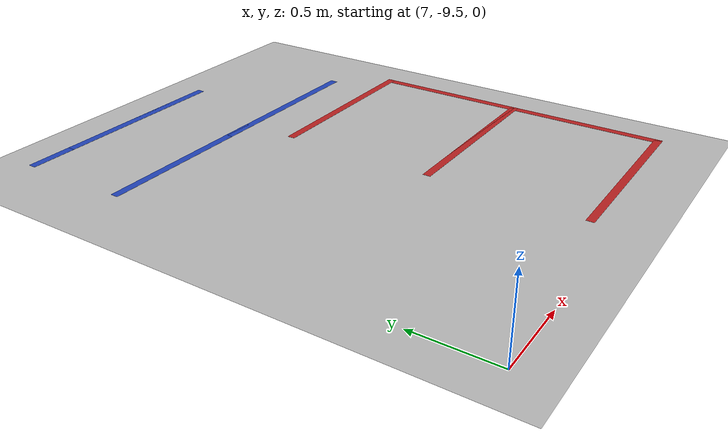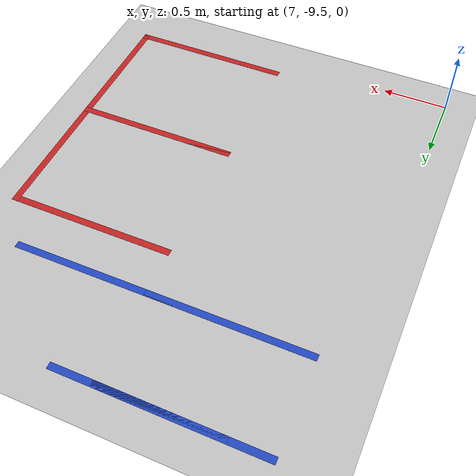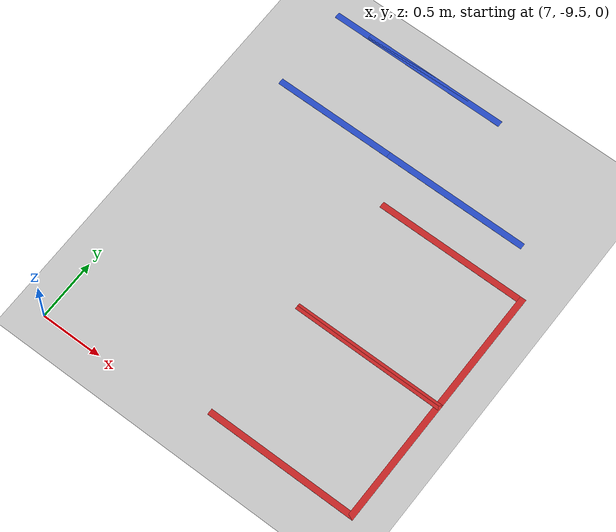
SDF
<sdf version="1.7">
 <world name="default">
  <model name="ground_plane">
   <static>1</static>
   <link name="link">
    <collision name="collision">
     <geometry><plane><normal>0 0 1</normal><size>100 100</size></plane></geometry>
     <surface>
      <contact><collide_bitmask>65535</collide_bitmask></contact>
      <friction><ode><mu>100</mu><mu2>50</mu2></ode></friction>
     </surface>
    </collision>
    <visual name="visual">
     <cast_shadows>0</cast_shadows>
     <geometry><plane><normal>0 0 1</normal><size>100 100</size></plane></geometry>
     <material>
      <script><uri>file://media/materials/scripts/gazebo.material</uri><name>Gazebo/Grey</name></script>
     </material>
    </visual>
   </link>
  </model>
  <model name="oneDemoParking_0">
   <link name="link_1">
    <inertial>
     <mass>1</mass>
     <inertia>
      <ixx>0.166667</ixx>
      <ixy>0</ixy>
      <ixz>0</ixz>
      <iyy>0.166667</iyy>
      <iyz>0</iyz>
      <izz>0.166667</izz>
     </inertia>
    </inertial>
    <visual name="visual">
     <pose>-0.5 0 0 0 -0 0</pose>
     <geometry><box><size>0.05 1.26 0.001</size></box></geometry>
     <material>
      <lighting>1</lighting>
      <script><uri>file://media/materials/scripts/gazebo.material</uri><name>Gazebo/Red</name></script>
      <shader type="pixel"><normal_map>__default__</normal_map></shader>
     </material>
    </visual>
    <visual name="ModelPreview_3::link_1::visual_3">
     <pose>0 0.605 0 0 -0 0</pose>
     <geometry><box><size>1.05 0.05 0.001</size></box></geometry>
     <material>
      <lighting>1</lighting>
      <script><uri>file://media/materials/scripts/gazebo.material</uri><name>Gazebo/Red</name></script>
      <shader type="pixel"><normal_map>__default__</normal_map></shader>
     </material>
    </visual>
    <visual name="ModelPreview_3::link_1::visual_2">
     <pose>0.5 0 0 0 -0 0</pose>
     <geometry><box><size>0.05 1.26 0.001</size></box></geometry>
     <material>
      <lighting>1</lighting>
      <script><uri>file://media/materials/scripts/gazebo.material</uri><name>Gazebo/Red</name></script>
      <shader type="pixel"><normal_map>__default__</normal_map></shader>
     </material>
    </visual>
    <collision name="collision">
     <pose>-0.5 0 0 0 -0 0</pose>
     <geometry><box><size>0.05 1.26 0.001</size></box></geometry>
     <surface>
      <friction>
       <ode><mu>1</mu><mu2>1</mu2><fdir1>0 0 0</fdir1><slip1>0</slip1><slip2>0</slip2></ode>
       <torsional>
        <coefficient>1</coefficient>
        <patch_radius>0</patch_radius>
        <surface_radius>0</surface_radius>
        <use_patch_radius>1</use_patch_radius>
        <ode><slip>0</slip></ode>
       </torsional>
      </friction>
      <bounce><restitution_coefficient>0</restitution_coefficient><threshold>1e+06</threshold></bounce>
      <contact>
       <collide_without_contact>0</collide_without_contact>
       <collide_without_contact_bitmask>1</collide_without_contact_bitmask>
       <collide_bitmask>1</collide_bitmask>
       <ode>
        <soft_cfm>0</soft_cfm>
        <soft_erp>0.2</soft_erp>
        <kp>1e+13</kp>
        <kd>1</kd>
        <max_vel>0.01</max_vel>
        <min_depth>0</min_depth>
       </ode>
       <bullet>
        <split_impulse>1</split_impulse>
        <split_impulse_penetration_threshold>-0.01</split_impulse_penetration_threshold>
        <soft_cfm>0</soft_cfm>
        <soft_erp>0.2</soft_erp>
        <kp>1e+13</kp>
        <kd>1</kd>
       </bullet>
      </contact>
     </surface>
    </collision>
    <collision name="collision_1">
     <pose>0.5 0 0 0 -0 0</pose>
     <geometry><box><size>0.05 1.26 0.001</size></box></geometry>
     <surface>
      <friction>
       <ode><mu>1</mu><mu2>1</mu2><fdir1>0 0 0</fdir1><slip1>0</slip1><slip2>0</slip2></ode>
       <torsional>
        <coefficient>1</coefficient>
        <patch_radius>0</patch_radius>
        <surface_radius>0</surface_radius>
        <use_patch_radius>1</use_patch_radius>
        <ode><slip>0</slip></ode>
       </torsional>
      </friction>
      <bounce><restitution_coefficient>0</restitution_coefficient><threshold>1e+06</threshold></bounce>
      <contact>
       <collide_without_contact>0</collide_without_contact>
       <collide_without_contact_bitmask>1</collide_without_contact_bitmask>
       <collide_bitmask>1</collide_bitmask>
       <ode>
        <soft_cfm>0</soft_cfm>
        <soft_erp>0.2</soft_erp>
        <kp>1e+13</kp>
        <kd>1</kd>
        <max_vel>0.01</max_vel>
        <min_depth>0</min_depth>
       </ode>
       <bullet>
        <split_impulse>1</split_impulse>
        <split_impulse_penetration_threshold>-0.01</split_impulse_penetration_threshold>
        <soft_cfm>0</soft_cfm>
        <soft_erp>0.2</soft_erp>
        <kp>1e+13</kp>
        <kd>1</kd>
       </bullet>
      </contact>
     </surface>
    </collision>
    <collision name="collision_2">
     <pose>0 0.605 0 0 -0 0</pose>
     <geometry><box><size>1.05 0.05 0.001</size></box></geometry>
     <surface>
      <friction>
       <ode><mu>1</mu><mu2>1</mu2><fdir1>0 0 0</fdir1><slip1>0</slip1><slip2>0</slip2></ode>
       <torsional>
        <coefficient>1</coefficient>
        <patch_radius>0</patch_radius>
        <surface_radius>0</surface_radius>
        <use_patch_radius>1</use_patch_radius>
        <ode><slip>0</slip></ode>
       </torsional>
      </friction>
      <bounce><restitution_coefficient>0</restitution_coefficient><threshold>1e+06</threshold></bounce>
      <contact>
       <collide_without_contact>0</collide_without_contact>
       <collide_without_contact_bitmask>1</collide_without_contact_bitmask>
       <collide_bitmask>1</collide_bitmask>
       <ode>
        <soft_cfm>0</soft_cfm>
        <soft_erp>0.2</soft_erp>
        <kp>1e+13</kp>
        <kd>1</kd>
        <max_vel>0.01</max_vel>
        <min_depth>0</min_depth>
       </ode>
       <bullet>
        <split_impulse>1</split_impulse>
        <split_impulse_penetration_threshold>-0.01</split_impulse_penetration_threshold>
        <soft_cfm>0</soft_cfm>
        <soft_erp>0.2</soft_erp>
        <kp>1e+13</kp>
        <kd>1</kd>
       </bullet>
      </contact>
     </surface>
    </collision>
    <collision name="collision_3">
     <pose>-0 -0.4 0 0 -0 0</pose>
     <geometry><cylinder><radius>0.2</radius><length>0.001</length></cylinder></geometry>
     <surface>
      <friction>
       <ode><mu>1</mu><mu2>1</mu2><fdir1>0 0 0</fdir1><slip1>0</slip1><slip2>0</slip2></ode>
       <torsional>
        <coefficient>1</coefficient>
        <patch_radius>0</patch_radius>
        <surface_radius>0</surface_radius>
        <use_patch_radius>1</use_patch_radius>
        <ode><slip>0</slip></ode>
       </torsional>
      </friction>
      <bounce><restitution_coefficient>0</restitution_coefficient><threshold>1e+06</threshold></bounce>
      <contact>
       <collide_without_contact>0</collide_without_contact>
       <collide_without_contact_bitmask>1</collide_without_contact_bitmask>
       <collide_bitmask>1</collide_bitmask>
       <ode>
        <soft_cfm>0</soft_cfm>
        <soft_erp>0.2</soft_erp>
        <kp>1e+13</kp>
        <kd>1</kd>
        <max_vel>0.01</max_vel>
        <min_depth>0</min_depth>
       </ode>
       <bullet>
        <split_impulse>1</split_impulse>
        <split_impulse_penetration_threshold>-0.01</split_impulse_penetration_threshold>
        <soft_cfm>0</soft_cfm>
        <soft_erp>0.2</soft_erp>
        <kp>1e+13</kp>
        <kd>1</kd>
       </bullet>
      </contact>
     </surface>
    </collision>
   </link>
   <static>1</static>
   <pose>9 -8.85 0 0 0 -1.571</pose>
  </model>
  <model name="oneDemoParking">
   <link name="link_1">
    <inertial>
     <mass>1</mass>
     <inertia>
      <ixx>0.166667</ixx>
      <ixy>0</ixy>
      <ixz>0</ixz>
      <iyy>0.166667</iyy>
      <iyz>0</iyz>
      <izz>0.166667</izz>
     </inertia>
    </inertial>
    <visual name="visual">
     <pose>-0.5 0 0 0 -0 0</pose>
     <geometry><box><size>0.05 1.26 0.001</size></box></geometry>
     <material>
      <lighting>1</lighting>
      <script><uri>file://media/materials/scripts/gazebo.material</uri><name>Gazebo/Red</name></script>
      <shader type="pixel"><normal_map>__default__</normal_map></shader>
     </material>
    </visual>
    <visual name="ModelPreview_3::link_1::visual_3">
     <pose>0 0.605 0 0 -0 0</pose>
     <geometry><box><size>1.05 0.05 0.001</size></box></geometry>
     <material>
      <lighting>1</lighting>
      <script><uri>file://media/materials/scripts/gazebo.material</uri><name>Gazebo/Red</name></script>
      <shader type="pixel"><normal_map>__default__</normal_map></shader>
     </material>
    </visual>
    <visual name="ModelPreview_3::link_1::visual_2">
     <pose>0.5 0 0 0 -0 0</pose>
     <geometry><box><size>0.05 1.26 0.001</size></box></geometry>
     <material>
      <lighting>1</lighting>
      <script><uri>file://media/materials/scripts/gazebo.material</uri><name>Gazebo/Red</name></script>
      <shader type="pixel"><normal_map>__default__</normal_map></shader>
     </material>
    </visual>
    <collision name="collision">
     <pose>-0.5 0 0 0 -0 0</pose>
     <geometry><box><size>0.05 1.26 0.001</size></box></geometry>
     <surface>
      <friction>
       <ode><mu>1</mu><mu2>1</mu2><fdir1>0 0 0</fdir1><slip1>0</slip1><slip2>0</slip2></ode>
       <torsional>
        <coefficient>1</coefficient>
        <patch_radius>0</patch_radius>
        <surface_radius>0</surface_radius>
        <use_patch_radius>1</use_patch_radius>
        <ode><slip>0</slip></ode>
       </torsional>
      </friction>
      <bounce><restitution_coefficient>0</restitution_coefficient><threshold>1e+06</threshold></bounce>
      <contact>
       <collide_without_contact>0</collide_without_contact>
       <collide_without_contact_bitmask>1</collide_without_contact_bitmask>
       <collide_bitmask>1</collide_bitmask>
       <ode>
        <soft_cfm>0</soft_cfm>
        <soft_erp>0.2</soft_erp>
        <kp>1e+13</kp>
        <kd>1</kd>
        <max_vel>0.01</max_vel>
        <min_depth>0</min_depth>
       </ode>
       <bullet>
        <split_impulse>1</split_impulse>
        <split_impulse_penetration_threshold>-0.01</split_impulse_penetration_threshold>
        <soft_cfm>0</soft_cfm>
        <soft_erp>0.2</soft_erp>
        <kp>1e+13</kp>
        <kd>1</kd>
       </bullet>
      </contact>
     </surface>
    </collision>
    <collision name="collision_1">
     <pose>0.5 0 0 0 -0 0</pose>
     <geometry><box><size>0.05 1.26 0.001</size></box></geometry>
     <surface>
      <friction>
       <ode><mu>1</mu><mu2>1</mu2><fdir1>0 0 0</fdir1><slip1>0</slip1><slip2>0</slip2></ode>
       <torsional>
        <coefficient>1</coefficient>
        <patch_radius>0</patch_radius>
        <surface_radius>0</surface_radius>
        <use_patch_radius>1</use_patch_radius>
        <ode><slip>0</slip></ode>
       </torsional>
      </friction>
      <bounce><restitution_coefficient>0</restitution_coefficient><threshold>1e+06</threshold></bounce>
      <contact>
       <collide_without_contact>0</collide_without_contact>
       <collide_without_contact_bitmask>1</collide_without_contact_bitmask>
       <collide_bitmask>1</collide_bitmask>
       <ode>
        <soft_cfm>0</soft_cfm>
        <soft_erp>0.2</soft_erp>
        <kp>1e+13</kp>
        <kd>1</kd>
        <max_vel>0.01</max_vel>
        <min_depth>0</min_depth>
       </ode>
       <bullet>
        <split_impulse>1</split_impulse>
        <split_impulse_penetration_threshold>-0.01</split_impulse_penetration_threshold>
        <soft_cfm>0</soft_cfm>
        <soft_erp>0.2</soft_erp>
        <kp>1e+13</kp>
        <kd>1</kd>
       </bullet>
      </contact>
     </surface>
    </collision>
    <collision name="collision_2">
     <pose>0 0.605 0 0 -0 0</pose>
     <geometry><box><size>1.05 0.05 0.001</size></box></geometry>
     <surface>
      <friction>
       <ode><mu>1</mu><mu2>1</mu2><fdir1>0 0 0</fdir1><slip1>0</slip1><slip2>0</slip2></ode>
       <torsional>
        <coefficient>1</coefficient>
        <patch_radius>0</patch_radius>
        <surface_radius>0</surface_radius>
        <use_patch_radius>1</use_patch_radius>
        <ode><slip>0</slip></ode>
       </torsional>
      </friction>
      <bounce><restitution_coefficient>0</restitution_coefficient><threshold>1e+06</threshold></bounce>
      <contact>
       <collide_without_contact>0</collide_without_contact>
       <collide_without_contact_bitmask>1</collide_without_contact_bitmask>
       <collide_bitmask>1</collide_bitmask>
       <ode>
        <soft_cfm>0</soft_cfm>
        <soft_erp>0.2</soft_erp>
        <kp>1e+13</kp>
        <kd>1</kd>
        <max_vel>0.01</max_vel>
        <min_depth>0</min_depth>
       </ode>
       <bullet>
        <split_impulse>1</split_impulse>
        <split_impulse_penetration_threshold>-0.01</split_impulse_penetration_threshold>
        <soft_cfm>0</soft_cfm>
        <soft_erp>0.2</soft_erp>
        <kp>1e+13</kp>
        <kd>1</kd>
       </bullet>
      </contact>
     </surface>
    </collision>
    <collision name="collision_3">
     <pose>-0 -0.4 0 0 -0 0</pose>
     <geometry><cylinder><radius>0.2</radius><length>0.001</length></cylinder></geometry>
     <surface>
      <friction>
       <ode><mu>1</mu><mu2>1</mu2><fdir1>0 0 0</fdir1><slip1>0</slip1><slip2>0</slip2></ode>
       <torsional>
        <coefficient>1</coefficient>
        <patch_radius>0</patch_radius>
        <surface_radius>0</surface_radius>
        <use_patch_radius>1</use_patch_radius>
        <ode><slip>0</slip></ode>
       </torsional>
      </friction>
      <bounce><restitution_coefficient>0</restitution_coefficient><threshold>1e+06</threshold></bounce>
      <contact>
       <collide_without_contact>0</collide_without_contact>
       <collide_without_contact_bitmask>1</collide_without_contact_bitmask>
       <collide_bitmask>1</collide_bitmask>
       <ode>
        <soft_cfm>0</soft_cfm>
        <soft_erp>0.2</soft_erp>
        <kp>1e+13</kp>
        <kd>1</kd>
        <max_vel>0.01</max_vel>
        <min_depth>0</min_depth>
       </ode>
       <bullet>
        <split_impulse>1</split_impulse>
        <split_impulse_penetration_threshold>-0.01</split_impulse_penetration_threshold>
        <soft_cfm>0</soft_cfm>
        <soft_erp>0.2</soft_erp>
        <kp>1e+13</kp>
        <kd>1</kd>
       </bullet>
      </contact>
     </surface>
    </collision>
   </link>
   <static>1</static>
   <pose>9 -7.85 0 0 0 -1.571</pose>
  </model>
  <model name="line120cm_0">
   <link name="link_1">
    <inertial>
     <mass>1</mass>
     <inertia>
      <ixx>0.166667</ixx>
      <ixy>0</ixy>
      <ixz>0</ixz>
      <iyy>0.166667</iyy>
      <iyz>0</iyz>
      <izz>0.166667</izz>
     </inertia>
    </inertial>
    <visual name="visual">
     <geometry><box><size>1.2 0.05 0.001</size></box></geometry>
     <material>
      <script><uri>file://media/materials/scripts/gazebo.material</uri><name>Gazebo/Blue</name></script>
     </material>
    </visual>
    <collision name="collision">
     <geometry><box><size>1.2 0.05 1e-05</size></box></geometry>
     <surface>
      <friction>
       <ode><mu>1</mu><mu2>1</mu2><fdir1>0 0 0</fdir1><slip1>0</slip1><slip2>0</slip2></ode>
       <torsional>
        <coefficient>1</coefficient>
        <patch_radius>0</patch_radius>
        <surface_radius>0</surface_radius>
        <use_patch_radius>1</use_patch_radius>
        <ode><slip>0</slip></ode>
       </torsional>
      </friction>
      <bounce><restitution_coefficient>0</restitution_coefficient><threshold>1e+06</threshold></bounce>
      <contact>
       <collide_without_contact>0</collide_without_contact>
       <collide_without_contact_bitmask>1</collide_without_contact_bitmask>
       <collide_bitmask>1</collide_bitmask>
       <ode>
        <soft_cfm>0</soft_cfm>
        <soft_erp>0.2</soft_erp>
        <kp>1e+13</kp>
        <kd>1</kd>
        <max_vel>0.01</max_vel>
        <min_depth>0</min_depth>
       </ode>
       <bullet>
        <split_impulse>1</split_impulse>
        <split_impulse_penetration_threshold>-0.01</split_impulse_penetration_threshold>
        <soft_cfm>0</soft_cfm>
        <soft_erp>0.2</soft_erp>
        <kp>1e+13</kp>
        <kd>1</kd>
       </bullet>
      </contact>
     </surface>
    </collision>
   </link>
   <static>1</static>
   <pose>8.76967 -7 0 0 -0 0</pose>
  </model>
  <model name="line120cm_0_clone">
   <link name="link_1">
    <inertial>
     <mass>1</mass>
     <inertia>
      <ixx>0.166667</ixx>
      <ixy>0</ixy>
      <ixz>0</ixz>
      <iyy>0.166667</iyy>
      <iyz>0</iyz>
      <izz>0.166667</izz>
     </inertia>
    </inertial>
    <visual name="visual">
     <geometry><box><size>1.2 0.05 0.001</size></box></geometry>
     <material>
      <script><uri>file://media/materials/scripts/gazebo.material</uri><name>Gazebo/Blue</name></script>
     </material>
    </visual>
    <collision name="collision">
     <geometry><box><size>1.2 0.05 1e-05</size></box></geometry>
     <surface>
      <friction>
       <ode><mu>1</mu><mu2>1</mu2><fdir1>0 0 0</fdir1><slip1>0</slip1><slip2>0</slip2></ode>
       <torsional>
        <coefficient>1</coefficient>
        <patch_radius>0</patch_radius>
        <surface_radius>0</surface_radius>
        <use_patch_radius>1</use_patch_radius>
        <ode><slip>0</slip></ode>
       </torsional>
      </friction>
      <bounce><restitution_coefficient>0</restitution_coefficient><threshold>1e+06</threshold></bounce>
      <contact>
       <collide_without_contact>0</collide_without_contact>
       <collide_without_contact_bitmask>1</collide_without_contact_bitmask>
       <collide_bitmask>1</collide_bitmask>
       <ode>
        <soft_cfm>0</soft_cfm>
        <soft_erp>0.2</soft_erp>
        <kp>1e+13</kp>
        <kd>1</kd>
        <max_vel>0.01</max_vel>
        <min_depth>0</min_depth>
       </ode>
       <bullet>
        <split_impulse>1</split_impulse>
        <split_impulse_penetration_threshold>-0.01</split_impulse_penetration_threshold>
        <soft_cfm>0</soft_cfm>
        <soft_erp>0.2</soft_erp>
        <kp>1e+13</kp>
        <kd>1</kd>
       </bullet>
      </contact>
     </surface>
    </collision>
   </link>
   <static>1</static>
   <pose>8.07198 -6.3 0 0 -0 0</pose>
  </model>
  <model name="line120cm_0_clone_clone">
   <link name="link_1">
    <inertial>
     <mass>1</mass>
     <inertia>
      <ixx>0.166667</ixx>
      <ixy>0</ixy>
      <ixz>0</ixz>
      <iyy>0.166667</iyy>
      <iyz>0</iyz>
      <izz>0.166667</izz>
     </inertia>
    </inertial>
    <visual name="visual">
     <geometry><box><size>1.2 0.05 0.001</size></box></geometry>
     <material>
      <script><uri>file://media/materials/scripts/gazebo.material</uri><name>Gazebo/Blue</name></script>
     </material>
    </visual>
    <collision name="collision">
     <geometry><box><size>1.2 0.05 1e-05</size></box></geometry>
     <surface>
      <friction>
       <ode><mu>1</mu><mu2>1</mu2><fdir1>0 0 0</fdir1><slip1>0</slip1><slip2>0</slip2></ode>
       <torsional>
        <coefficient>1</coefficient>
        <patch_radius>0</patch_radius>
        <surface_radius>0</surface_radius>
        <use_patch_radius>1</use_patch_radius>
        <ode><slip>0</slip></ode>
       </torsional>
      </friction>
      <bounce><restitution_coefficient>0</restitution_coefficient><threshold>1e+06</threshold></bounce>
      <contact>
       <collide_without_contact>0</collide_without_contact>
       <collide_without_contact_bitmask>1</collide_without_contact_bitmask>
       <collide_bitmask>1</collide_bitmask>
       <ode>
        <soft_cfm>0</soft_cfm>
        <soft_erp>0.2</soft_erp>
        <kp>1e+13</kp>
        <kd>1</kd>
        <max_vel>0.01</max_vel>
        <min_depth>0</min_depth>
       </ode>
       <bullet>
        <split_impulse>1</split_impulse>
        <split_impulse_penetration_threshold>-0.01</split_impulse_penetration_threshold>
        <soft_cfm>0</soft_cfm>
        <soft_erp>0.2</soft_erp>
        <kp>1e+13</kp>
        <kd>1</kd>
       </bullet>
      </contact>
     </surface>
    </collision>
   </link>
   <static>1</static>
   <pose>7.7715 -6.3 0 0 -0 0</pose>
  </model>
  <model name="line120cm_2">
   <link name="link_1">
    <inertial>
     <mass>1</mass>
     <inertia>
      <ixx>0.166667</ixx>
      <ixy>0</ixy>
      <ixz>0</ixz>
      <iyy>0.166667</iyy>
      <iyz>0</iyz>
      <izz>0.166667</izz>
     </inertia>
    </inertial>
    <visual name="visual">
     <geometry><box><size>1.2 0.05 0.001</size></box></geometry>
     <material>
      <script><uri>file://media/materials/scripts/gazebo.material</uri><name>Gazebo/Blue</name></script>
     </material>
    </visual>
    <collision name="collision">
     <geometry><box><size>1.2 0.05 1e-05</size></box></geometry>
     <surface>
      <friction>
       <ode><mu>1</mu><mu2>1</mu2><fdir1>0 0 0</fdir1><slip1>0</slip1><slip2>0</slip2></ode>
       <torsional>
        <coefficient>1</coefficient>
        <patch_radius>0</patch_radius>
        <surface_radius>0</surface_radius>
        <use_patch_radius>1</use_patch_radius>
        <ode><slip>0</slip></ode>
       </torsional>
      </friction>
      <bounce><restitution_coefficient>0</restitution_coefficient><threshold>1e+06</threshold></bounce>
      <contact>
       <collide_without_contact>0</collide_without_contact>
       <collide_without_contact_bitmask>1</collide_without_contact_bitmask>
       <collide_bitmask>1</collide_bitmask>
       <ode>
        <soft_cfm>0</soft_cfm>
        <soft_erp>0.2</soft_erp>
        <kp>1e+13</kp>
        <kd>1</kd>
        <max_vel>0.01</max_vel>
        <min_depth>0</min_depth>
       </ode>
       <bullet>
        <split_impulse>1</split_impulse>
        <split_impulse_penetration_threshold>-0.01</split_impulse_penetration_threshold>
        <soft_cfm>0</soft_cfm>
        <soft_erp>0.2</soft_erp>
        <kp>1e+13</kp>
        <kd>1</kd>
       </bullet>
      </contact>
     </surface>
    </collision>
   </link>
   <static>1</static>
   <pose>7.77755 -7 0 0 -0 0</pose>
  </model>
 </world>
</sdf>
